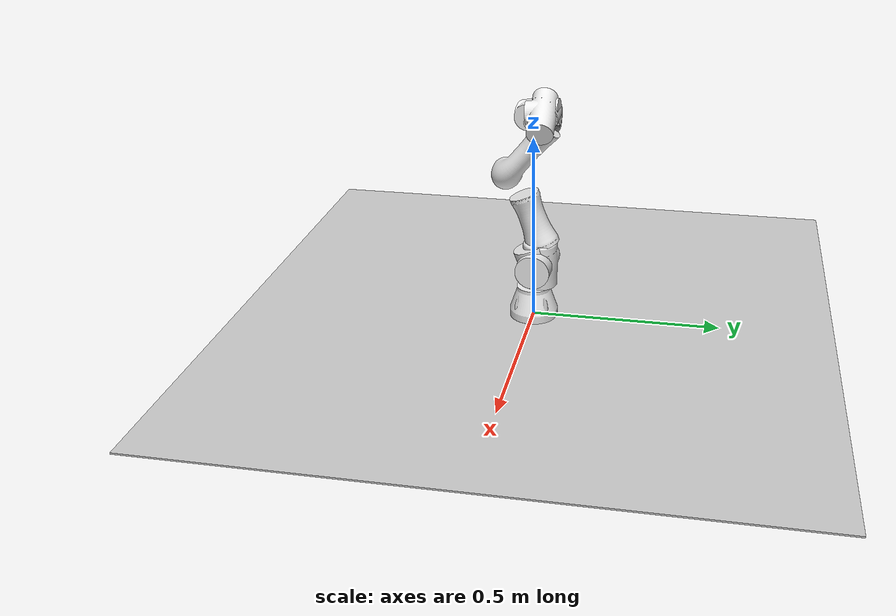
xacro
<?xml version="1.0"?>
<!--
  Standalone wrapper that instantiates the lexium_cobot_l03s macro on a
  world root link.  Used by display_l03s.launch for PRUEBA 1.
-->
<robot xmlns:xacro="http://www.ros.org/wiki/xacro" name="lexium_cobot_l03s_standalone">

  <xacro:include filename="$(find lexium_cobot_description)/urdf/lexium_cobot_l03s.urdf.xacro"/>

  <link name="world"/>

  <!-- Optional reference floor so RViz "world" frame stays grounded -->
  <link name="floor">
    <visual>
      <origin xyz="0 0 -0.002" rpy="0 0 0"/>
      <geometry><box size="1.60 1.60 0.004"/></geometry>
      <material name="floor_mat"><color rgba="0.78 0.78 0.78 1.0"/></material>
    </visual>
  </link>
  <joint name="world_to_floor" type="fixed">
    <parent link="world"/>
    <child  link="floor"/>
    <origin xyz="0 0 0" rpy="0 0 0"/>
  </joint>

  <xacro:lexium_cobot_l03s name="lexium"
                            parent="world"
                            mount_xyz="-0.065 0.065 0"
                            mount_rpy="1.5707963267948966 0 0"/>

</robot>

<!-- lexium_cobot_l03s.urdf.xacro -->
<robot xmlns:xacro="http://www.ros.org/wiki/xacro" name="lexium_cobot_l03s">

  <!-- ===== Materials ================================================== -->
  <material name="lexium_white">  <color rgba="0.92 0.92 0.92 1.0"/></material>
  <material name="lexium_dark">   <color rgba="0.18 0.18 0.18 1.0"/></material>
  <material name="lexium_green">  <color rgba="0.20 0.60 0.30 1.0"/></material>
  <material name="lexium_flange"> <color rgba="0.55 0.55 0.55 1.0"/></material>
  <material name="lexium_steel">  <color rgba="0.70 0.70 0.72 1.0"/></material>

  <!-- ===== Joint physical limits (LXMRL03S0000 datasheet) ============== -->
  <xacro:property name="J1_LIM" value="6.283185307"/>   <!-- +/-360 deg -->
  <xacro:property name="J2_LIM" value="2.617993878"/>   <!-- +/-150 deg -->
  <xacro:property name="J3_LIM" value="2.617993878"/>   <!-- +/-150 deg -->
  <xacro:property name="J4_LIM" value="6.283185307"/>   <!-- +/-360 deg -->
  <xacro:property name="J5_LIM" value="2.094395102"/>   <!-- +/-120 deg -->
  <xacro:property name="J6_LIM" value="6.283185307"/>   <!-- +/-360 deg -->

  <xacro:property name="J_EFF"  value="56.0"/>
  <xacro:property name="J_VEL"  value="3.1416"/>

  <!-- ===== Inertial placeholder helper (small mass + diag inertia) ===== -->
  <xacro:macro name="placeholder_inertial" params="mass:=1.5">
    <inertial>
      <origin xyz="0 0 0" rpy="0 0 0"/>
      <mass value="${mass}"/>
      <inertia ixx="0.005" iyy="0.005" izz="0.005"
               ixy="0" ixz="0" iyz="0"/>
    </inertial>
  </xacro:macro>

  <xacro:macro name="lexium_cobot_l03s"
               params="name parent
                       mount_xyz:='0 0 0'
                       mount_rpy:='0 0 0'">

    <!-- ============================================================
         base_link (link0_base.stl)  -  pedestal
         ============================================================ -->
    <link name="${name}_base_link">
      <visual>
        <origin xyz="0 0 0" rpy="0 0 0"/>
        <geometry>
          <mesh filename="package://lexium_cobot_description/meshes/visual/link0_base.stl"
                scale="0.001 0.001 0.001"/>
        </geometry>
        <material name="lexium_white"/>
      </visual>
      <collision>
        <origin xyz="0.0645 0.043 0.065" rpy="0 0 0"/>
        <geometry><box size="0.130 0.090 0.130"/></geometry>
      </collision>
      <xacro:placeholder_inertial mass="3.0"/>
    </link>

    <joint name="${parent}_to_${name}_base_link" type="fixed">
      <parent link="${parent}"/>
      <child  link="${name}_base_link"/>
      <origin xyz="${mount_xyz}" rpy="${mount_rpy}"/>
    </joint>

    <link name="${name}_shoulder_link">
      <visual>
        <origin xyz="-0.046 -0.086 -0.050" rpy="0 0 0"/>
        <geometry>
          <mesh filename="package://lexium_cobot_description/meshes/visual/link1_shoulder_rotation.stl"
                scale="0.001 0.001 0.001"/>
        </geometry>
        <material name="lexium_white"/>
      </visual>
      <!-- shoulder_connector visual, fixed to shoulder_link (same global pose) -->
      <visual>
        <origin xyz="-0.046 -0.086 -0.050" rpy="0 0 0"/>
        <geometry>
          <mesh filename="package://lexium_cobot_description/meshes/visual/link2_shoulder_connector.stl"
                scale="0.001 0.001 0.001"/>
        </geometry>
        <material name="lexium_white"/>
      </visual>
      <collision>
        <origin xyz="0 0.030 0" rpy="0 0 0"/>
        <geometry><cylinder radius="0.060" length="0.130"/></geometry>
      </collision>
      <xacro:placeholder_inertial mass="2.5"/>
    </link>

    <joint name="${name}_J1" type="revolute">
      <parent link="${name}_base_link"/>
      <child  link="${name}_shoulder_link"/>
      <origin xyz="0.046 0.086 0.050" rpy="0 0 0"/>
      <axis xyz="0 1 0"/>
      <limit lower="-${J1_LIM}" upper="${J1_LIM}"
             effort="${J_EFF}" velocity="${J_VEL}"/>
      <dynamics damping="0.10" friction="0.0"/>
    </joint>

    <link name="${name}_upper_arm_link">
      <visual>
        <origin xyz="-0.046 -0.183 -0.067" rpy="0 0 0"/>
        <geometry>
          <mesh filename="package://lexium_cobot_description/meshes/visual/link2_elbow_joint.stl"
                scale="0.001 0.001 0.001"/>
        </geometry>
        <material name="lexium_white"/>
      </visual>
      <collision>
        <origin xyz="0 0.085 0" rpy="0 0 0"/>
        <geometry><cylinder radius="0.055" length="0.170"/></geometry>
      </collision>
      <xacro:placeholder_inertial mass="2.5"/>
    </link>

    <joint name="${name}_J2" type="revolute">
      <parent link="${name}_shoulder_link"/>
      <child  link="${name}_upper_arm_link"/>
      <origin xyz="0 0.097 0.017" rpy="0 0 0"/>
      <axis xyz="1 0 0"/>
      <limit lower="-${J2_LIM}" upper="${J2_LIM}"
             effort="${J_EFF}" velocity="${J_VEL}"/>
      <dynamics damping="0.10" friction="0.0"/>
    </joint>

    <link name="${name}_forearm_link">
      <visual>
        <origin xyz="-0.042 -0.341 -0.099" rpy="0 0 0"/>
        <geometry>
          <mesh filename="package://lexium_cobot_description/meshes/visual/link3_forearm.stl"
                scale="0.001 0.001 0.001"/>
        </geometry>
        <material name="lexium_white"/>
      </visual>
      <visual>
        <origin xyz="-0.042 -0.341 -0.099" rpy="0 0 0"/>
        <geometry>
          <mesh filename="package://lexium_cobot_description/meshes/visual/link3_elbow_connector.stl"
                scale="0.001 0.001 0.001"/>
        </geometry>
        <material name="lexium_white"/>
      </visual>
      <collision>
        <origin xyz="0 0.103 0" rpy="0 0 0"/>
        <geometry><cylinder radius="0.045" length="0.230"/></geometry>
      </collision>
      <xacro:placeholder_inertial mass="2.2"/>
    </link>

    <joint name="${name}_J3" type="revolute">
      <parent link="${name}_upper_arm_link"/>
      <child  link="${name}_forearm_link"/>
      <origin xyz="-0.004 0.158 0.032" rpy="0 0 0"/>
      <axis xyz="1 0 0"/>
      <limit lower="-${J3_LIM}" upper="${J3_LIM}"
             effort="${J_EFF}" velocity="${J_VEL}"/>
      <dynamics damping="0.10" friction="0.0"/>
    </joint>

    <link name="${name}_wrist1_link">
      <visual>
        <origin xyz="-0.036 -0.520 -0.026" rpy="0 0 0"/>
        <geometry>
          <mesh filename="package://lexium_cobot_description/meshes/visual/link4_wrist1_cylinder.stl"
                scale="0.001 0.001 0.001"/>
        </geometry>
        <material name="lexium_white"/>
      </visual>
      <collision>
        <origin xyz="0 0.034 0" rpy="0 0 0"/>
        <geometry><cylinder radius="0.035" length="0.068"/></geometry>
      </collision>
      <xacro:placeholder_inertial mass="0.8"/>
    </link>

    <joint name="${name}_J4" type="revolute">
      <parent link="${name}_forearm_link"/>
      <child  link="${name}_wrist1_link"/>
      <origin xyz="-0.006 0.179 -0.073" rpy="0 0 0"/>
      <axis xyz="0 1 0"/>
      <limit lower="-${J4_LIM}" upper="${J4_LIM}"
             effort="${J_EFF}" velocity="${J_VEL}"/>
      <dynamics damping="0.10" friction="0.0"/>
    </joint>

    <link name="${name}_wrist2_link">
      <visual>
        <origin xyz="-0.052 -0.552 -0.039" rpy="0 0 0"/>
        <geometry>
          <mesh filename="package://lexium_cobot_description/meshes/visual/link5_wrist2_body.stl"
                scale="0.001 0.001 0.001"/>
        </geometry>
        <material name="lexium_white"/>
      </visual>
      <!-- wrist2_cylinder is a fixed cylindrical sub-feature (axial face);
           bbox X[0,0.077] Y[0.521,0.597] Z[0,0.113]. -->
      <visual>
        <origin xyz="-0.052 -0.552 -0.039" rpy="0 0 0"/>
        <geometry>
          <mesh filename="package://lexium_cobot_description/meshes/visual/link5_wrist2_cylinder.stl"
                scale="0.001 0.001 0.001"/>
        </geometry>
        <material name="lexium_white"/>
      </visual>
      <collision>
        <origin xyz="0 0.005 0.010" rpy="0 0 0"/>
        <geometry><box size="0.110 0.090 0.115"/></geometry>
      </collision>
      <xacro:placeholder_inertial mass="0.7"/>
    </link>

    <joint name="${name}_J5" type="revolute">
      <parent link="${name}_wrist1_link"/>
      <child  link="${name}_wrist2_link"/>
      <origin xyz="0.016 0.032 0.013" rpy="0 0 0"/>
      <axis xyz="1 0 0"/>
      <limit lower="-${J5_LIM}" upper="${J5_LIM}"
             effort="${J_EFF}" velocity="${J_VEL}"/>
      <dynamics damping="0.10" friction="0.0"/>
    </joint>

    <link name="${name}_wrist3_link">
      <visual>
        <origin xyz="-0.036 -0.559 -0.046" rpy="0 0 0"/>
        <geometry>
          <mesh filename="package://lexium_cobot_description/meshes/visual/link6_wrist3_cylinder.stl"
                scale="0.001 0.001 0.001"/>
        </geometry>
        <material name="lexium_white"/>
      </visual>
      <visual>
        <origin xyz="-0.036 -0.559 -0.046" rpy="0 0 0"/>
        <geometry>
          <mesh filename="package://lexium_cobot_description/meshes/visual/link6_wrist3_upper_body.stl"
                scale="0.001 0.001 0.001"/>
        </geometry>
        <material name="lexium_white"/>
      </visual>
      <collision>
        <origin xyz="0 0 0" rpy="0 0 0"/>
        <geometry><cylinder radius="0.025" length="0.075"/></geometry>
      </collision>
      <xacro:placeholder_inertial mass="0.4"/>
    </link>

    <joint name="${name}_J6" type="revolute">
      <parent link="${name}_wrist2_link"/>
      <child  link="${name}_wrist3_link"/>
      <origin xyz="-0.016 0.007 0.007" rpy="0 0 0"/>
      <axis xyz="0 1 0"/>
      <limit lower="-${J6_LIM}" upper="${J6_LIM}"
             effort="${J_EFF}" velocity="${J_VEL}"/>
      <dynamics damping="0.10" friction="0.0"/>
    </joint>

    <link name="${name}_flange">
      <visual>
        <origin xyz="-0.027 -0.529 -0.033" rpy="0 0 0"/>
        <geometry>
          <mesh filename="package://lexium_cobot_description/meshes/visual/link6_tool_flange.stl"
                scale="0.001 0.001 0.001"/>
        </geometry>
        <material name="lexium_flange"/>
      </visual>
      <xacro:placeholder_inertial mass="0.2"/>
    </link>

    <joint name="${name}_wrist3_to_flange" type="fixed">
      <parent link="${name}_wrist3_link"/>
      <child  link="${name}_flange"/>
      <origin xyz="-0.009 -0.030 -0.013" rpy="0 0 0"/>
    </joint>

    <link name="${name}_tool0"/>
    <joint name="${name}_flange_to_tool0" type="fixed">
      <parent link="${name}_flange"/>
      <child  link="${name}_tool0"/>
      <origin xyz="0 0.020 0" rpy="0 0 0"/>
    </joint>

  </xacro:macro>

</robot>
